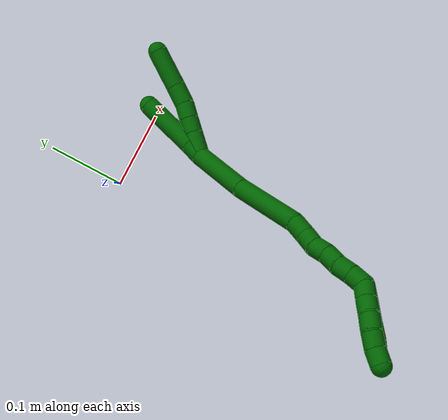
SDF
<sdf version="1.7">
 <world name="default">
  <model name="6">
   <static>0</static>
   <link name="6">
    <collision name="collision-cylinder-e_1_2_8">
     <pose>-0.004683 0.00409 -0.014177 -2.86072 -0.307322 1.66196</pose>
     <geometry><cylinder><radius>0.0125</radius><length>0.030962</length></cylinder></geometry>
     <surface>
      <friction><ode><mu>1.16</mu><mu2>1.16</mu2><slip1>0</slip1><slip2>0</slip2></ode></friction>
      <contact><ode><kp>1e+06</kp><kd>1</kd><max_vel>0</max_vel><min_depth>0.001</min_depth></ode></contact>
     </surface>
    </collision>
    <visual name="visual-cylinder-e_1_2_8">
     <pose>-0.004683 0.00409 -0.014177 -2.86072 -0.307322 1.66196</pose>
     <geometry><cylinder><radius>0.0125</radius><length>0.030962</length></cylinder></geometry>
     <material><ambient>0 0.392157 0.003922 1</ambient></material>
    </visual>
    <collision name="collision-cylinder-e_2_8_9">
     <pose>-0.012694 0.010166 -0.037872 -2.93596 -0.329766 2.03145</pose>
     <geometry><cylinder><radius>0.0125</radius><length>0.020552</length></cylinder></geometry>
     <surface>
      <friction><ode><mu>1.16</mu><mu2>1.16</mu2><slip1>0</slip1><slip2>0</slip2></ode></friction>
      <contact><ode><kp>1e+06</kp><kd>1</kd><max_vel>0</max_vel><min_depth>0.001</min_depth></ode></contact>
     </surface>
    </collision>
    <visual name="visual-cylinder-e_2_8_9">
     <pose>-0.012694 0.010166 -0.037872 -2.93596 -0.329766 2.03145</pose>
     <geometry><cylinder><radius>0.0125</radius><length>0.020552</length></cylinder></geometry>
     <material><ambient>0 0.392157 0.003922 1</ambient></material>
    </visual>
    <collision name="collision-cylinder-e_3_9_10">
     <pose>-0.019485 0.014364 -0.056947 -2.91405 -0.339452 1.96547</pose>
     <geometry><cylinder><radius>0.0125</radius><length>0.020808</length></cylinder></geometry>
     <surface>
      <friction><ode><mu>1.16</mu><mu2>1.16</mu2><slip1>0</slip1><slip2>0</slip2></ode></friction>
      <contact><ode><kp>1e+06</kp><kd>1</kd><max_vel>0</max_vel><min_depth>0.001</min_depth></ode></contact>
     </surface>
    </collision>
    <visual name="visual-cylinder-e_3_9_10">
     <pose>-0.019485 0.014364 -0.056947 -2.91405 -0.339452 1.96547</pose>
     <geometry><cylinder><radius>0.0125</radius><length>0.020808</length></cylinder></geometry>
     <material><ambient>0 0.392157 0.003922 1</ambient></material>
    </visual>
    <collision name="collision-cylinder-e_4_10_11">
     <pose>-0.025299 0.017809 -0.079335 -3.04581 -0.180291 2.16655</pose>
     <geometry><cylinder><radius>0.0125</radius><length>0.026204</length></cylinder></geometry>
     <surface>
      <friction><ode><mu>1.16</mu><mu2>1.16</mu2><slip1>0</slip1><slip2>0</slip2></ode></friction>
      <contact><ode><kp>1e+06</kp><kd>1</kd><max_vel>0</max_vel><min_depth>0.001</min_depth></ode></contact>
     </surface>
    </collision>
    <visual name="visual-cylinder-e_4_10_11">
     <pose>-0.025299 0.017809 -0.079335 -3.04581 -0.180291 2.16655</pose>
     <geometry><cylinder><radius>0.0125</radius><length>0.026204</length></cylinder></geometry>
     <material><ambient>0 0.392157 0.003922 1</ambient></material>
    </visual>
    <collision name="collision-cylinder-e_5_11_6">
     <pose>-0.032241 0.019846 -0.117477 -3.10983 -0.179414 2.79204</pose>
     <geometry><cylinder><radius>0.0125</radius><length>0.051475</length></cylinder></geometry>
     <surface>
      <friction><ode><mu>1.16</mu><mu2>1.16</mu2><slip1>0</slip1><slip2>0</slip2></ode></friction>
      <contact><ode><kp>1e+06</kp><kd>1</kd><max_vel>0</max_vel><min_depth>0.001</min_depth></ode></contact>
     </surface>
    </collision>
    <visual name="visual-cylinder-e_5_11_6">
     <pose>-0.032241 0.019846 -0.117477 -3.10983 -0.179414 2.79204</pose>
     <geometry><cylinder><radius>0.0125</radius><length>0.051475</length></cylinder></geometry>
     <material><ambient>0 0.392157 0.003922 1</ambient></material>
    </visual>
    <collision name="collision-cylinder-e_1_2_12">
     <pose>0.001265 0.002683 -0.009747 -2.87299 0.12452 -0.864565</pose>
     <geometry><cylinder><radius>0.0125</radius><length>0.020376</length></cylinder></geometry>
     <surface>
      <friction><ode><mu>1.16</mu><mu2>1.16</mu2><slip1>0</slip1><slip2>0</slip2></ode></friction>
      <contact><ode><kp>1e+06</kp><kd>1</kd><max_vel>0</max_vel><min_depth>0.001</min_depth></ode></contact>
     </surface>
    </collision>
    <visual name="visual-cylinder-e_1_2_12">
     <pose>0.001265 0.002683 -0.009747 -2.87299 0.12452 -0.864565</pose>
     <geometry><cylinder><radius>0.0125</radius><length>0.020376</length></cylinder></geometry>
     <material><ambient>0 0.392157 0.003922 1</ambient></material>
    </visual>
    <collision name="collision-cylinder-e_2_12_5">
     <pose>0.009392 0.01525 -0.057443 -2.8868 0.173207 -1.19137</pose>
     <geometry><cylinder><radius>0.0125</radius><length>0.079624</length></cylinder></geometry>
     <surface>
      <friction><ode><mu>1.16</mu><mu2>1.16</mu2><slip1>0</slip1><slip2>0</slip2></ode></friction>
      <contact><ode><kp>1e+06</kp><kd>1</kd><max_vel>0</max_vel><min_depth>0.001</min_depth></ode></contact>
     </surface>
    </collision>
    <visual name="visual-cylinder-e_2_12_5">
     <pose>0.009392 0.01525 -0.057443 -2.8868 0.173207 -1.19137</pose>
     <geometry><cylinder><radius>0.0125</radius><length>0.079624</length></cylinder></geometry>
     <material><ambient>0 0.392157 0.003922 1</ambient></material>
    </visual>
    <collision name="collision-cylinder-e_1_2_13">
     <pose>-0.011062 -0.021877 0.033763 0.574923 -0.268339 -0.079772</pose>
     <geometry><cylinder><radius>0.0125</radius><length>0.083449</length></cylinder></geometry>
     <surface>
      <friction><ode><mu>1.16</mu><mu2>1.16</mu2><slip1>0</slip1><slip2>0</slip2></ode></friction>
      <contact><ode><kp>1e+06</kp><kd>1</kd><max_vel>0</max_vel><min_depth>0.001</min_depth></ode></contact>
     </surface>
    </collision>
    <visual name="visual-cylinder-e_1_2_13">
     <pose>-0.011062 -0.021877 0.033763 0.574923 -0.268339 -0.079772</pose>
     <geometry><cylinder><radius>0.0125</radius><length>0.083449</length></cylinder></geometry>
     <material><ambient>0 0.392157 0.003922 1</ambient></material>
    </visual>
    <collision name="collision-cylinder-e_2_13_14">
     <pose>-0.038324 -0.067598 0.104249 0.575895 -0.354354 -0.105965</pose>
     <geometry><cylinder><radius>0.0125</radius><length>0.093371</length></cylinder></geometry>
     <surface>
      <friction><ode><mu>1.16</mu><mu2>1.16</mu2><slip1>0</slip1><slip2>0</slip2></ode></friction>
      <contact><ode><kp>1e+06</kp><kd>1</kd><max_vel>0</max_vel><min_depth>0.001</min_depth></ode></contact>
     </surface>
    </collision>
    <visual name="visual-cylinder-e_2_13_14">
     <pose>-0.038324 -0.067598 0.104249 0.575895 -0.354354 -0.105965</pose>
     <geometry><cylinder><radius>0.0125</radius><length>0.093371</length></cylinder></geometry>
     <material><ambient>0 0.392157 0.003922 1</ambient></material>
    </visual>
    <collision name="collision-cylinder-e_3_14_15">
     <pose>-0.055619 -0.096187 0.151176 0.435265 -0.09705 -0.021477</pose>
     <geometry><cylinder><radius>0.0125</radius><length>0.022613</length></cylinder></geometry>
     <surface>
      <friction><ode><mu>1.16</mu><mu2>1.16</mu2><slip1>0</slip1><slip2>0</slip2></ode></friction>
      <contact><ode><kp>1e+06</kp><kd>1</kd><max_vel>0</max_vel><min_depth>0.001</min_depth></ode></contact>
     </surface>
    </collision>
    <visual name="visual-cylinder-e_3_14_15">
     <pose>-0.055619 -0.096187 0.151176 0.435265 -0.09705 -0.021477</pose>
     <geometry><cylinder><radius>0.0125</radius><length>0.022613</length></cylinder></geometry>
     <material><ambient>0 0.392157 0.003922 1</ambient></material>
    </visual>
    <collision name="collision-cylinder-e_4_15_16">
     <pose>-0.057496 -0.106801 0.169469 0.627645 -0.078121 -0.025365</pose>
     <geometry><cylinder><radius>0.0125</radius><length>0.020048</length></cylinder></geometry>
     <surface>
      <friction><ode><mu>1.16</mu><mu2>1.16</mu2><slip1>0</slip1><slip2>0</slip2></ode></friction>
      <contact><ode><kp>1e+06</kp><kd>1</kd><max_vel>0</max_vel><min_depth>0.001</min_depth></ode></contact>
     </surface>
    </collision>
    <visual name="visual-cylinder-e_4_15_16">
     <pose>-0.057496 -0.106801 0.169469 0.627645 -0.078121 -0.025365</pose>
     <geometry><cylinder><radius>0.0125</radius><length>0.020048</length></cylinder></geometry>
     <material><ambient>0 0.392157 0.003922 1</ambient></material>
    </visual>
    <collision name="collision-cylinder-e_5_16_17">
     <pose>-0.061971 -0.117703 0.185409 0.570148 -0.376971 -0.111685</pose>
     <geometry><cylinder><radius>0.0125</radius><length>0.020062</length></cylinder></geometry>
     <surface>
      <friction><ode><mu>1.16</mu><mu2>1.16</mu2><slip1>0</slip1><slip2>0</slip2></ode></friction>
      <contact><ode><kp>1e+06</kp><kd>1</kd><max_vel>0</max_vel><min_depth>0.001</min_depth></ode></contact>
     </surface>
    </collision>
    <visual name="visual-cylinder-e_5_16_17">
     <pose>-0.061971 -0.117703 0.185409 0.570148 -0.376971 -0.111685</pose>
     <geometry><cylinder><radius>0.0125</radius><length>0.020062</length></cylinder></geometry>
     <material><ambient>0 0.392157 0.003922 1</ambient></material>
    </visual>
    <collision name="collision-cylinder-e_6_17_18">
     <pose>-0.067253 -0.127963 0.201757 0.551431 -0.158046 -0.0448</pose>
     <geometry><cylinder><radius>0.0125</radius><length>0.020202</length></cylinder></geometry>
     <surface>
      <friction><ode><mu>1.16</mu><mu2>1.16</mu2><slip1>0</slip1><slip2>0</slip2></ode></friction>
      <contact><ode><kp>1e+06</kp><kd>1</kd><max_vel>0</max_vel><min_depth>0.001</min_depth></ode></contact>
     </surface>
    </collision>
    <visual name="visual-cylinder-e_6_17_18">
     <pose>-0.067253 -0.127963 0.201757 0.551431 -0.158046 -0.0448</pose>
     <geometry><cylinder><radius>0.0125</radius><length>0.020202</length></cylinder></geometry>
     <material><ambient>0 0.392157 0.003922 1</ambient></material>
    </visual>
    <collision name="collision-cylinder-e_7_18_19">
     <pose>-0.072224 -0.137181 0.218908 0.432102 -0.340915 -0.07552</pose>
     <geometry><cylinder><radius>0.0125</radius><length>0.020226</length></cylinder></geometry>
     <surface>
      <friction><ode><mu>1.16</mu><mu2>1.16</mu2><slip1>0</slip1><slip2>0</slip2></ode></friction>
      <contact><ode><kp>1e+06</kp><kd>1</kd><max_vel>0</max_vel><min_depth>0.001</min_depth></ode></contact>
     </surface>
    </collision>
    <visual name="visual-cylinder-e_7_18_19">
     <pose>-0.072224 -0.137181 0.218908 0.432102 -0.340915 -0.07552</pose>
     <geometry><cylinder><radius>0.0125</radius><length>0.020226</length></cylinder></geometry>
     <material><ambient>0 0.392157 0.003922 1</ambient></material>
    </visual>
    <collision name="collision-cylinder-e_8_19_1">
     <pose>-0.078026 -0.145017 0.236488 0.406761 -0.244092 -0.05058</pose>
     <geometry><cylinder><radius>0.0125</radius><length>0.02003</length></cylinder></geometry>
     <surface>
      <friction><ode><mu>1.16</mu><mu2>1.16</mu2><slip1>0</slip1><slip2>0</slip2></ode></friction>
      <contact><ode><kp>1e+06</kp><kd>1</kd><max_vel>0</max_vel><min_depth>0.001</min_depth></ode></contact>
     </surface>
    </collision>
    <visual name="visual-cylinder-e_8_19_1">
     <pose>-0.078026 -0.145017 0.236488 0.406761 -0.244092 -0.05058</pose>
     <geometry><cylinder><radius>0.0125</radius><length>0.02003</length></cylinder></geometry>
     <material><ambient>0 0.392157 0.003922 1</ambient></material>
    </visual>
    <collision name="collision-cylinder-e_1_1_20">
     <pose>-0.076874 -0.155103 0.252363 0.731751 0.365284 0.141291</pose>
     <geometry><cylinder><radius>0.0125</radius><length>0.02</length></cylinder></geometry>
     <surface>
      <friction><ode><mu>1.16</mu><mu2>1.16</mu2><slip1>0</slip1><slip2>0</slip2></ode></friction>
      <contact><ode><kp>1e+06</kp><kd>1</kd><max_vel>0</max_vel><min_depth>0.001</min_depth></ode></contact>
     </surface>
    </collision>
    <visual name="visual-cylinder-e_1_1_20">
     <pose>-0.076874 -0.155103 0.252363 0.731751 0.365284 0.141291</pose>
     <geometry><cylinder><radius>0.0125</radius><length>0.02</length></cylinder></geometry>
     <material><ambient>0 0.392157 0.003922 1</ambient></material>
    </visual>
    <collision name="collision-cylinder-e_2_20_21">
     <pose>-0.070163 -0.167928 0.266152 0.766372 0.319305 0.129638</pose>
     <geometry><cylinder><radius>0.0125</radius><length>0.02</length></cylinder></geometry>
     <surface>
      <friction><ode><mu>1.16</mu><mu2>1.16</mu2><slip1>0</slip1><slip2>0</slip2></ode></friction>
      <contact><ode><kp>1e+06</kp><kd>1</kd><max_vel>0</max_vel><min_depth>0.001</min_depth></ode></contact>
     </surface>
    </collision>
    <visual name="visual-cylinder-e_2_20_21">
     <pose>-0.070163 -0.167928 0.266152 0.766372 0.319305 0.129638</pose>
     <geometry><cylinder><radius>0.0125</radius><length>0.02</length></cylinder></geometry>
     <material><ambient>0 0.392157 0.003922 1</ambient></material>
    </visual>
    <collision name="collision-cylinder-e_3_21_22">
     <pose>-0.062882 -0.17928 0.280746 0.551207 0.427032 0.122481</pose>
     <geometry><cylinder><radius>0.0125</radius><length>0.02</length></cylinder></geometry>
     <surface>
      <friction><ode><mu>1.16</mu><mu2>1.16</mu2><slip1>0</slip1><slip2>0</slip2></ode></friction>
      <contact><ode><kp>1e+06</kp><kd>1</kd><max_vel>0</max_vel><min_depth>0.001</min_depth></ode></contact>
     </surface>
    </collision>
    <visual name="visual-cylinder-e_3_21_22">
     <pose>-0.062882 -0.17928 0.280746 0.551207 0.427032 0.122481</pose>
     <geometry><cylinder><radius>0.0125</radius><length>0.02</length></cylinder></geometry>
     <material><ambient>0 0.392157 0.003922 1</ambient></material>
    </visual>
    <collision name="collision-cylinder-e_4_22_23">
     <pose>-0.054722 -0.187183 0.297103 0.349594 0.413576 0.074062</pose>
     <geometry><cylinder><radius>0.0125</radius><length>0.02</length></cylinder></geometry>
     <surface>
      <friction><ode><mu>1.16</mu><mu2>1.16</mu2><slip1>0</slip1><slip2>0</slip2></ode></friction>
      <contact><ode><kp>1e+06</kp><kd>1</kd><max_vel>0</max_vel><min_depth>0.001</min_depth></ode></contact>
     </surface>
    </collision>
    <visual name="visual-cylinder-e_4_22_23">
     <pose>-0.054722 -0.187183 0.297103 0.349594 0.413576 0.074062</pose>
     <geometry><cylinder><radius>0.0125</radius><length>0.02</length></cylinder></geometry>
     <material><ambient>0 0.392157 0.003922 1</ambient></material>
    </visual>
    <collision name="collision-cylinder-e_5_23_4">
     <pose>-0.048157 -0.194223 0.314553 0.41556 0.257463 0.054567</pose>
     <geometry><cylinder><radius>0.0125</radius><length>0.02</length></cylinder></geometry>
     <surface>
      <friction><ode><mu>1.16</mu><mu2>1.16</mu2><slip1>0</slip1><slip2>0</slip2></ode></friction>
      <contact><ode><kp>1e+06</kp><kd>1</kd><max_vel>0</max_vel><min_depth>0.001</min_depth></ode></contact>
     </surface>
    </collision>
    <visual name="visual-cylinder-e_5_23_4">
     <pose>-0.048157 -0.194223 0.314553 0.41556 0.257463 0.054567</pose>
     <geometry><cylinder><radius>0.0125</radius><length>0.02</length></cylinder></geometry>
     <material><ambient>0 0.392157 0.003922 1</ambient></material>
    </visual>
    <collision name="collision-cylinder-e_1_1_24">
     <pose>-0.075008 -0.14391 0.255641 -0.450939 0.4464 -0.104032</pose>
     <geometry><cylinder><radius>0.0125</radius><length>0.025196</length></cylinder></geometry>
     <surface>
      <friction><ode><mu>1.16</mu><mu2>1.16</mu2><slip1>0</slip1><slip2>0</slip2></ode></friction>
      <contact><ode><kp>1e+06</kp><kd>1</kd><max_vel>0</max_vel><min_depth>0.001</min_depth></ode></contact>
     </surface>
    </collision>
    <visual name="visual-cylinder-e_1_1_24">
     <pose>-0.075008 -0.14391 0.255641 -0.450939 0.4464 -0.104032</pose>
     <geometry><cylinder><radius>0.0125</radius><length>0.025196</length></cylinder></geometry>
     <material><ambient>0 0.392157 0.003922 1</ambient></material>
    </visual>
    <collision name="collision-cylinder-e_2_24_25">
     <pose>-0.064699 -0.134641 0.27472 -0.453716 0.45923 -0.107803</pose>
     <geometry><cylinder><radius>0.0125</radius><length>0.021973</length></cylinder></geometry>
     <surface>
      <friction><ode><mu>1.16</mu><mu2>1.16</mu2><slip1>0</slip1><slip2>0</slip2></ode></friction>
      <contact><ode><kp>1e+06</kp><kd>1</kd><max_vel>0</max_vel><min_depth>0.001</min_depth></ode></contact>
     </surface>
    </collision>
    <visual name="visual-cylinder-e_2_24_25">
     <pose>-0.064699 -0.134641 0.27472 -0.453716 0.45923 -0.107803</pose>
     <geometry><cylinder><radius>0.0125</radius><length>0.021973</length></cylinder></geometry>
     <material><ambient>0 0.392157 0.003922 1</ambient></material>
    </visual>
    <collision name="collision-cylinder-e_3_25_26">
     <pose>-0.053849 -0.121901 0.295068 -0.632305 0.397326 -0.131522</pose>
     <geometry><cylinder><radius>0.0125</radius><length>0.030911</length></cylinder></geometry>
     <surface>
      <friction><ode><mu>1.16</mu><mu2>1.16</mu2><slip1>0</slip1><slip2>0</slip2></ode></friction>
      <contact><ode><kp>1e+06</kp><kd>1</kd><max_vel>0</max_vel><min_depth>0.001</min_depth></ode></contact>
     </surface>
    </collision>
    <visual name="visual-cylinder-e_3_25_26">
     <pose>-0.053849 -0.121901 0.295068 -0.632305 0.397326 -0.131522</pose>
     <geometry><cylinder><radius>0.0125</radius><length>0.030911</length></cylinder></geometry>
     <material><ambient>0 0.392157 0.003922 1</ambient></material>
    </visual>
    <collision name="collision-cylinder-e_4_26_3">
     <pose>-0.042715 -0.108246 0.3147 -0.571581 0.489446 -0.146495</pose>
     <geometry><cylinder><radius>0.0125</radius><length>0.02192</length></cylinder></geometry>
     <surface>
      <friction><ode><mu>1.16</mu><mu2>1.16</mu2><slip1>0</slip1><slip2>0</slip2></ode></friction>
      <contact><ode><kp>1e+06</kp><kd>1</kd><max_vel>0</max_vel><min_depth>0.001</min_depth></ode></contact>
     </surface>
    </collision>
    <visual name="visual-cylinder-e_4_26_3">
     <pose>-0.042715 -0.108246 0.3147 -0.571581 0.489446 -0.146495</pose>
     <geometry><cylinder><radius>0.0125</radius><length>0.02192</length></cylinder></geometry>
     <material><ambient>0 0.392157 0.003922 1</ambient></material>
    </visual>
    <collision name="collision-sphere-3">
     <pose>-0.037563 -0.103013 0.322836 0 -0 0</pose>
     <geometry><sphere><radius>0.0125</radius></sphere></geometry>
     <surface>
      <friction><ode><mu>1.16</mu><mu2>1.16</mu2><slip1>0</slip1><slip2>0</slip2></ode></friction>
      <contact><ode><kp>1e+06</kp><kd>1</kd><max_vel>0</max_vel><min_depth>0.001</min_depth></ode></contact>
     </surface>
    </collision>
    <visual name="visual-sphere-3">
     <pose>-0.037563 -0.103013 0.322836 0 -0 0</pose>
     <geometry><sphere><radius>0.0125</radius></sphere></geometry>
     <material><ambient>0 0.392157 0.003922 1</ambient></material>
    </visual>
    <collision name="collision-sphere-26">
     <pose>-0.047868 -0.113479 0.306565 0 -0 0</pose>
     <geometry><sphere><radius>0.0125</radius></sphere></geometry>
     <surface>
      <friction><ode><mu>1.16</mu><mu2>1.16</mu2><slip1>0</slip1><slip2>0</slip2></ode></friction>
      <contact><ode><kp>1e+06</kp><kd>1</kd><max_vel>0</max_vel><min_depth>0.001</min_depth></ode></contact>
     </surface>
    </collision>
    <visual name="visual-sphere-26">
     <pose>-0.047868 -0.113479 0.306565 0 -0 0</pose>
     <geometry><sphere><radius>0.0125</radius></sphere></geometry>
     <material><ambient>0 0.392157 0.003922 1</ambient></material>
    </visual>
    <collision name="collision-sphere-25">
     <pose>-0.059829 -0.130324 0.283572 0 -0 0</pose>
     <geometry><sphere><radius>0.0125</radius></sphere></geometry>
     <surface>
      <friction><ode><mu>1.16</mu><mu2>1.16</mu2><slip1>0</slip1><slip2>0</slip2></ode></friction>
      <contact><ode><kp>1e+06</kp><kd>1</kd><max_vel>0</max_vel><min_depth>0.001</min_depth></ode></contact>
     </surface>
    </collision>
    <visual name="visual-sphere-25">
     <pose>-0.059829 -0.130324 0.283572 0 -0 0</pose>
     <geometry><sphere><radius>0.0125</radius></sphere></geometry>
     <material><ambient>0 0.392157 0.003922 1</ambient></material>
    </visual>
    <collision name="collision-sphere-24">
     <pose>-0.069569 -0.138957 0.265868 0 -0 0</pose>
     <geometry><sphere><radius>0.0125</radius></sphere></geometry>
     <surface>
      <friction><ode><mu>1.16</mu><mu2>1.16</mu2><slip1>0</slip1><slip2>0</slip2></ode></friction>
      <contact><ode><kp>1e+06</kp><kd>1</kd><max_vel>0</max_vel><min_depth>0.001</min_depth></ode></contact>
     </surface>
    </collision>
    <visual name="visual-sphere-24">
     <pose>-0.069569 -0.138957 0.265868 0 -0 0</pose>
     <geometry><sphere><radius>0.0125</radius></sphere></geometry>
     <material><ambient>0 0.392157 0.003922 1</ambient></material>
    </visual>
    <collision name="collision-sphere-4">
     <pose>-0.04561 -0.198127 0.323401 0 -0 0</pose>
     <geometry><sphere><radius>0.0125</radius></sphere></geometry>
     <surface>
      <friction><ode><mu>1.16</mu><mu2>1.16</mu2><slip1>0</slip1><slip2>0</slip2></ode></friction>
      <contact><ode><kp>1e+06</kp><kd>1</kd><max_vel>0</max_vel><min_depth>0.001</min_depth></ode></contact>
     </surface>
    </collision>
    <visual name="visual-sphere-4">
     <pose>-0.04561 -0.198127 0.323401 0 -0 0</pose>
     <geometry><sphere><radius>0.0125</radius></sphere></geometry>
     <material><ambient>0 0.392157 0.003922 1</ambient></material>
    </visual>
    <collision name="collision-sphere-23">
     <pose>-0.050703 -0.19032 0.305706 0 -0 0</pose>
     <geometry><sphere><radius>0.0125</radius></sphere></geometry>
     <surface>
      <friction><ode><mu>1.16</mu><mu2>1.16</mu2><slip1>0</slip1><slip2>0</slip2></ode></friction>
      <contact><ode><kp>1e+06</kp><kd>1</kd><max_vel>0</max_vel><min_depth>0.001</min_depth></ode></contact>
     </surface>
    </collision>
    <visual name="visual-sphere-23">
     <pose>-0.050703 -0.19032 0.305706 0 -0 0</pose>
     <geometry><sphere><radius>0.0125</radius></sphere></geometry>
     <material><ambient>0 0.392157 0.003922 1</ambient></material>
    </visual>
    <collision name="collision-sphere-22">
     <pose>-0.058741 -0.184047 0.2885 0 -0 0</pose>
     <geometry><sphere><radius>0.0125</radius></sphere></geometry>
     <surface>
      <friction><ode><mu>1.16</mu><mu2>1.16</mu2><slip1>0</slip1><slip2>0</slip2></ode></friction>
      <contact><ode><kp>1e+06</kp><kd>1</kd><max_vel>0</max_vel><min_depth>0.001</min_depth></ode></contact>
     </surface>
    </collision>
    <visual name="visual-sphere-22">
     <pose>-0.058741 -0.184047 0.2885 0 -0 0</pose>
     <geometry><sphere><radius>0.0125</radius></sphere></geometry>
     <material><ambient>0 0.392157 0.003922 1</ambient></material>
    </visual>
    <collision name="collision-sphere-21">
     <pose>-0.067024 -0.174513 0.272992 0 -0 0</pose>
     <geometry><sphere><radius>0.0125</radius></sphere></geometry>
     <surface>
      <friction><ode><mu>1.16</mu><mu2>1.16</mu2><slip1>0</slip1><slip2>0</slip2></ode></friction>
      <contact><ode><kp>1e+06</kp><kd>1</kd><max_vel>0</max_vel><min_depth>0.001</min_depth></ode></contact>
     </surface>
    </collision>
    <visual name="visual-sphere-21">
     <pose>-0.067024 -0.174513 0.272992 0 -0 0</pose>
     <geometry><sphere><radius>0.0125</radius></sphere></geometry>
     <material><ambient>0 0.392157 0.003922 1</ambient></material>
    </visual>
    <collision name="collision-sphere-20">
     <pose>-0.073302 -0.161344 0.259312 0 -0 0</pose>
     <geometry><sphere><radius>0.0125</radius></sphere></geometry>
     <surface>
      <friction><ode><mu>1.16</mu><mu2>1.16</mu2><slip1>0</slip1><slip2>0</slip2></ode></friction>
      <contact><ode><kp>1e+06</kp><kd>1</kd><max_vel>0</max_vel><min_depth>0.001</min_depth></ode></contact>
     </surface>
    </collision>
    <visual name="visual-sphere-20">
     <pose>-0.073302 -0.161344 0.259312 0 -0 0</pose>
     <geometry><sphere><radius>0.0125</radius></sphere></geometry>
     <material><ambient>0 0.392157 0.003922 1</ambient></material>
    </visual>
    <collision name="collision-sphere-6">
     <pose>-0.036834 0.020651 -0.142788 0 -0 0</pose>
     <geometry><sphere><radius>0.0125</radius></sphere></geometry>
     <surface>
      <friction><ode><mu>1.16</mu><mu2>1.16</mu2><slip1>0</slip1><slip2>0</slip2></ode></friction>
      <contact><ode><kp>1e+06</kp><kd>1</kd><max_vel>0</max_vel><min_depth>0.001</min_depth></ode></contact>
     </surface>
    </collision>
    <visual name="visual-sphere-6">
     <pose>-0.036834 0.020651 -0.142788 0 -0 0</pose>
     <geometry><sphere><radius>0.0125</radius></sphere></geometry>
     <material><ambient>0 0.392157 0.003922 1</ambient></material>
    </visual>
    <collision name="collision-sphere-11">
     <pose>-0.027648 0.019042 -0.092165 0 -0 0</pose>
     <geometry><sphere><radius>0.0125</radius></sphere></geometry>
     <surface>
      <friction><ode><mu>1.16</mu><mu2>1.16</mu2><slip1>0</slip1><slip2>0</slip2></ode></friction>
      <contact><ode><kp>1e+06</kp><kd>1</kd><max_vel>0</max_vel><min_depth>0.001</min_depth></ode></contact>
     </surface>
    </collision>
    <visual name="visual-sphere-11">
     <pose>-0.027648 0.019042 -0.092165 0 -0 0</pose>
     <geometry><sphere><radius>0.0125</radius></sphere></geometry>
     <material><ambient>0 0.392157 0.003922 1</ambient></material>
    </visual>
    <collision name="collision-sphere-10">
     <pose>-0.02295 0.016577 -0.066504 0 -0 0</pose>
     <geometry><sphere><radius>0.0125</radius></sphere></geometry>
     <surface>
      <friction><ode><mu>1.16</mu><mu2>1.16</mu2><slip1>0</slip1><slip2>0</slip2></ode></friction>
      <contact><ode><kp>1e+06</kp><kd>1</kd><max_vel>0</max_vel><min_depth>0.001</min_depth></ode></contact>
     </surface>
    </collision>
    <visual name="visual-sphere-10">
     <pose>-0.02295 0.016577 -0.066504 0 -0 0</pose>
     <geometry><sphere><radius>0.0125</radius></sphere></geometry>
     <material><ambient>0 0.392157 0.003922 1</ambient></material>
    </visual>
    <collision name="collision-sphere-9">
     <pose>-0.016021 0.012151 -0.047389 0 -0 0</pose>
     <geometry><sphere><radius>0.0125</radius></sphere></geometry>
     <surface>
      <friction><ode><mu>1.16</mu><mu2>1.16</mu2><slip1>0</slip1><slip2>0</slip2></ode></friction>
      <contact><ode><kp>1e+06</kp><kd>1</kd><max_vel>0</max_vel><min_depth>0.001</min_depth></ode></contact>
     </surface>
    </collision>
    <visual name="visual-sphere-9">
     <pose>-0.016021 0.012151 -0.047389 0 -0 0</pose>
     <geometry><sphere><radius>0.0125</radius></sphere></geometry>
     <material><ambient>0 0.392157 0.003922 1</ambient></material>
    </visual>
    <collision name="collision-sphere-2">
     <geometry><sphere><radius>0.0125</radius></sphere></geometry>
     <surface>
      <friction><ode><mu>1.16</mu><mu2>1.16</mu2><slip1>0</slip1><slip2>0</slip2></ode></friction>
      <contact><ode><kp>1e+06</kp><kd>1</kd><max_vel>0</max_vel><min_depth>0.001</min_depth></ode></contact>
     </surface>
    </collision>
    <visual name="visual-sphere-2">
     <geometry><sphere><radius>0.0125</radius></sphere></geometry>
     <material><ambient>0 0.392157 0.003922 1</ambient></material>
    </visual>
    <collision name="collision-sphere-19">
     <pose>-0.075606 -0.141172 0.227563 0 -0 0</pose>
     <geometry><sphere><radius>0.0125</radius></sphere></geometry>
     <surface>
      <friction><ode><mu>1.16</mu><mu2>1.16</mu2><slip1>0</slip1><slip2>0</slip2></ode></friction>
      <contact><ode><kp>1e+06</kp><kd>1</kd><max_vel>0</max_vel><min_depth>0.001</min_depth></ode></contact>
     </surface>
    </collision>
    <visual name="visual-sphere-19">
     <pose>-0.075606 -0.141172 0.227563 0 -0 0</pose>
     <geometry><sphere><radius>0.0125</radius></sphere></geometry>
     <material><ambient>0 0.392157 0.003922 1</ambient></material>
    </visual>
    <collision name="collision-sphere-8">
     <pose>-0.009366 0.00818 -0.028355 0 -0 0</pose>
     <geometry><sphere><radius>0.0125</radius></sphere></geometry>
     <surface>
      <friction><ode><mu>1.16</mu><mu2>1.16</mu2><slip1>0</slip1><slip2>0</slip2></ode></friction>
      <contact><ode><kp>1e+06</kp><kd>1</kd><max_vel>0</max_vel><min_depth>0.001</min_depth></ode></contact>
     </surface>
    </collision>
    <visual name="visual-sphere-8">
     <pose>-0.009366 0.00818 -0.028355 0 -0 0</pose>
     <geometry><sphere><radius>0.0125</radius></sphere></geometry>
     <material><ambient>0 0.392157 0.003922 1</ambient></material>
    </visual>
    <collision name="collision-sphere-12">
     <pose>0.002531 0.005366 -0.019493 0 -0 0</pose>
     <geometry><sphere><radius>0.0125</radius></sphere></geometry>
     <surface>
      <friction><ode><mu>1.16</mu><mu2>1.16</mu2><slip1>0</slip1><slip2>0</slip2></ode></friction>
      <contact><ode><kp>1e+06</kp><kd>1</kd><max_vel>0</max_vel><min_depth>0.001</min_depth></ode></contact>
     </surface>
    </collision>
    <visual name="visual-sphere-12">
     <pose>0.002531 0.005366 -0.019493 0 -0 0</pose>
     <geometry><sphere><radius>0.0125</radius></sphere></geometry>
     <material><ambient>0 0.392157 0.003922 1</ambient></material>
    </visual>
    <collision name="collision-sphere-5">
     <pose>0.016253 0.025134 -0.095394 0 -0 0</pose>
     <geometry><sphere><radius>0.0125</radius></sphere></geometry>
     <surface>
      <friction><ode><mu>1.16</mu><mu2>1.16</mu2><slip1>0</slip1><slip2>0</slip2></ode></friction>
      <contact><ode><kp>1e+06</kp><kd>1</kd><max_vel>0</max_vel><min_depth>0.001</min_depth></ode></contact>
     </surface>
    </collision>
    <visual name="visual-sphere-5">
     <pose>0.016253 0.025134 -0.095394 0 -0 0</pose>
     <geometry><sphere><radius>0.0125</radius></sphere></geometry>
     <material><ambient>0 0.392157 0.003922 1</ambient></material>
    </visual>
    <collision name="collision-sphere-13">
     <pose>-0.022125 -0.043753 0.067527 0 -0 0</pose>
     <geometry><sphere><radius>0.0125</radius></sphere></geometry>
     <surface>
      <friction><ode><mu>1.16</mu><mu2>1.16</mu2><slip1>0</slip1><slip2>0</slip2></ode></friction>
      <contact><ode><kp>1e+06</kp><kd>1</kd><max_vel>0</max_vel><min_depth>0.001</min_depth></ode></contact>
     </surface>
    </collision>
    <visual name="visual-sphere-13">
     <pose>-0.022125 -0.043753 0.067527 0 -0 0</pose>
     <geometry><sphere><radius>0.0125</radius></sphere></geometry>
     <material><ambient>0 0.392157 0.003922 1</ambient></material>
    </visual>
    <collision name="collision-sphere-14">
     <pose>-0.054523 -0.091442 0.140972 0 -0 0</pose>
     <geometry><sphere><radius>0.0125</radius></sphere></geometry>
     <surface>
      <friction><ode><mu>1.16</mu><mu2>1.16</mu2><slip1>0</slip1><slip2>0</slip2></ode></friction>
      <contact><ode><kp>1e+06</kp><kd>1</kd><max_vel>0</max_vel><min_depth>0.001</min_depth></ode></contact>
     </surface>
    </collision>
    <visual name="visual-sphere-14">
     <pose>-0.054523 -0.091442 0.140972 0 -0 0</pose>
     <geometry><sphere><radius>0.0125</radius></sphere></geometry>
     <material><ambient>0 0.392157 0.003922 1</ambient></material>
    </visual>
    <collision name="collision-sphere-15">
     <pose>-0.056714 -0.100932 0.16138 0 -0 0</pose>
     <geometry><sphere><radius>0.0125</radius></sphere></geometry>
     <surface>
      <friction><ode><mu>1.16</mu><mu2>1.16</mu2><slip1>0</slip1><slip2>0</slip2></ode></friction>
      <contact><ode><kp>1e+06</kp><kd>1</kd><max_vel>0</max_vel><min_depth>0.001</min_depth></ode></contact>
     </surface>
    </collision>
    <visual name="visual-sphere-15">
     <pose>-0.056714 -0.100932 0.16138 0 -0 0</pose>
     <geometry><sphere><radius>0.0125</radius></sphere></geometry>
     <material><ambient>0 0.392157 0.003922 1</ambient></material>
    </visual>
    <collision name="collision-sphere-16">
     <pose>-0.058279 -0.112669 0.177558 0 -0 0</pose>
     <geometry><sphere><radius>0.0125</radius></sphere></geometry>
     <surface>
      <friction><ode><mu>1.16</mu><mu2>1.16</mu2><slip1>0</slip1><slip2>0</slip2></ode></friction>
      <contact><ode><kp>1e+06</kp><kd>1</kd><max_vel>0</max_vel><min_depth>0.001</min_depth></ode></contact>
     </surface>
    </collision>
    <visual name="visual-sphere-16">
     <pose>-0.058279 -0.112669 0.177558 0 -0 0</pose>
     <geometry><sphere><radius>0.0125</radius></sphere></geometry>
     <material><ambient>0 0.392157 0.003922 1</ambient></material>
    </visual>
    <collision name="collision-sphere-17">
     <pose>-0.065664 -0.122738 0.19326 0 -0 0</pose>
     <geometry><sphere><radius>0.0125</radius></sphere></geometry>
     <surface>
      <friction><ode><mu>1.16</mu><mu2>1.16</mu2><slip1>0</slip1><slip2>0</slip2></ode></friction>
      <contact><ode><kp>1e+06</kp><kd>1</kd><max_vel>0</max_vel><min_depth>0.001</min_depth></ode></contact>
     </surface>
    </collision>
    <visual name="visual-sphere-17">
     <pose>-0.065664 -0.122738 0.19326 0 -0 0</pose>
     <geometry><sphere><radius>0.0125</radius></sphere></geometry>
     <material><ambient>0 0.392157 0.003922 1</ambient></material>
    </visual>
    <collision name="collision-sphere-18">
     <pose>-0.068843 -0.133189 0.210253 0 -0 0</pose>
     <geometry><sphere><radius>0.0125</radius></sphere></geometry>
     <surface>
      <friction><ode><mu>1.16</mu><mu2>1.16</mu2><slip1>0</slip1><slip2>0</slip2></ode></friction>
      <contact><ode><kp>1e+06</kp><kd>1</kd><max_vel>0</max_vel><min_depth>0.001</min_depth></ode></contact>
     </surface>
    </collision>
    <visual name="visual-sphere-18">
     <pose>-0.068843 -0.133189 0.210253 0 -0 0</pose>
     <geometry><sphere><radius>0.0125</radius></sphere></geometry>
     <material><ambient>0 0.392157 0.003922 1</ambient></material>
    </visual>
    <collision name="collision-sphere-1">
     <pose>-0.080446 -0.148862 0.245413 0 -0 0</pose>
     <geometry><sphere><radius>0.0125</radius></sphere></geometry>
     <surface>
      <friction><ode><mu>1.16</mu><mu2>1.16</mu2><slip1>0</slip1><slip2>0</slip2></ode></friction>
      <contact><ode><kp>1e+06</kp><kd>1</kd><max_vel>0</max_vel><min_depth>0.001</min_depth></ode></contact>
     </surface>
    </collision>
    <visual name="visual-sphere-1">
     <pose>-0.080446 -0.148862 0.245413 0 -0 0</pose>
     <geometry><sphere><radius>0.0125</radius></sphere></geometry>
     <material><ambient>0 0.392157 0.003922 1</ambient></material>
    </visual>
    <inertial>
     <pose>-0.036088 -0.066783 0.103656 0 -0 0</pose>
     <mass>0.75</mass>
     <inertia><ixx>9.9e-05</ixx><ixy>0</ixy><ixz>0</ixz><iyy>7.8e-05</iyy><iyz>0</iyz><izz>9.7e-05</izz></inertia>
    </inertial>
   </link>
   <pose>0.081165 -0.076714 0.04603 -1.51159 0.164059 2.72827</pose>
  </model>
 </world>
</sdf>
